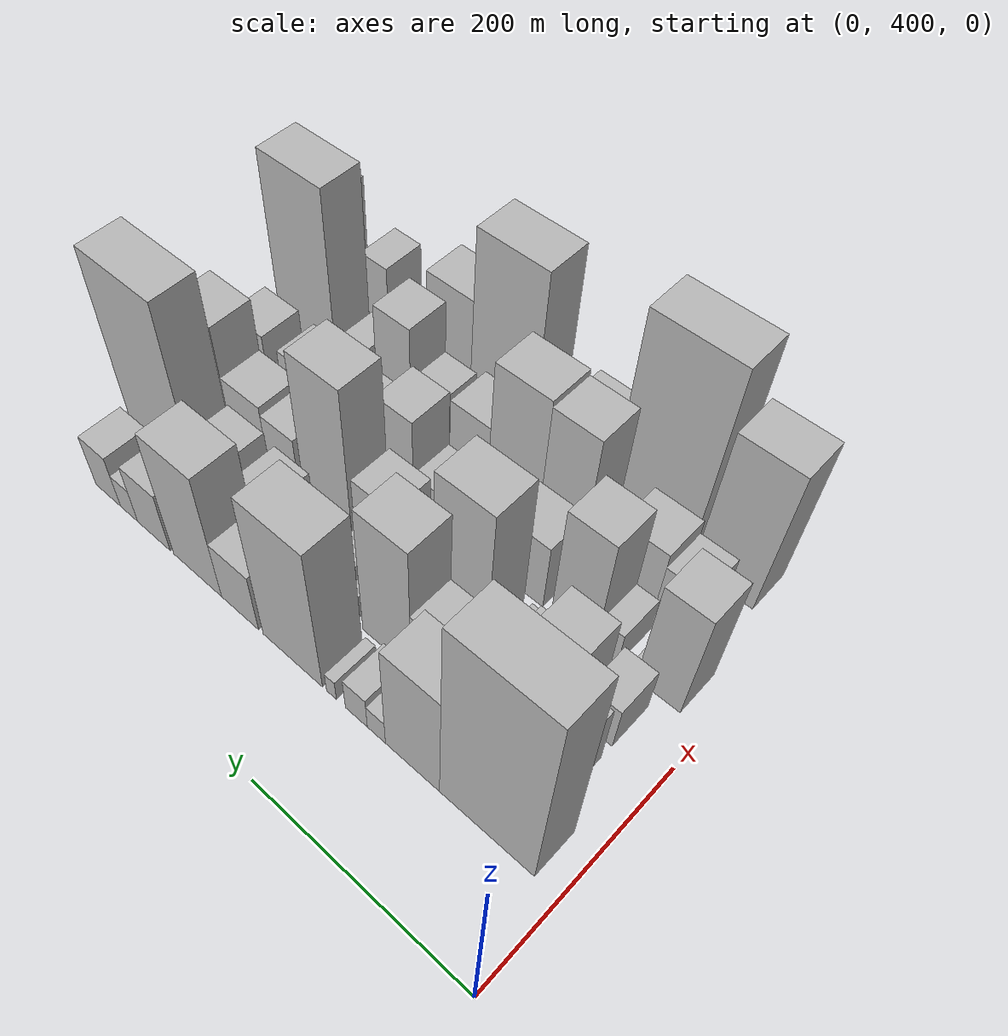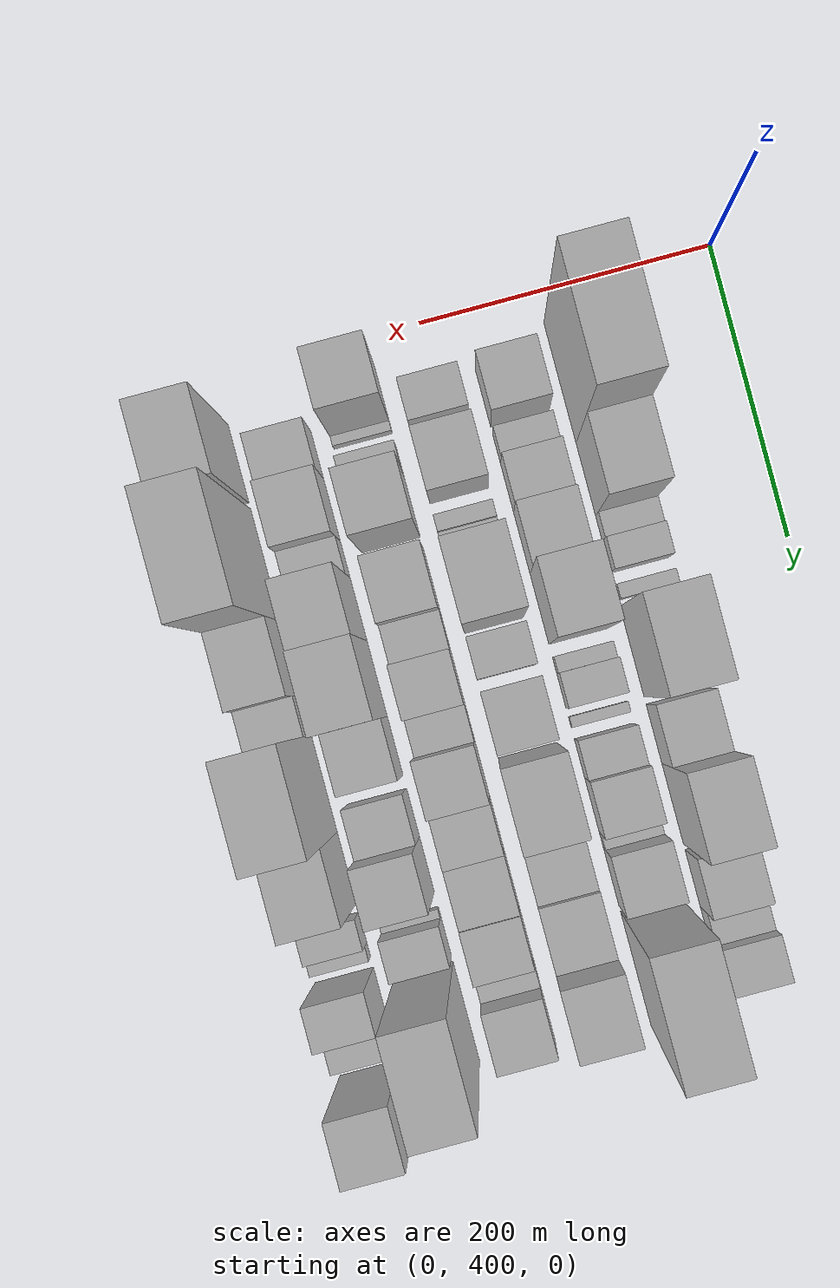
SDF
<sdf version="1.6">
 <world name="default">
  <model name="building_34">
   <static>1</static>
   <pose>100.0000 462.2733 0 0.000000 0.000000 0.000000</pose>
   <link name="link">
    <pose>0 0 109.50 0 0 0</pose>
    <collision name="collision"><geometry><box><size>40.0000 82.7467 219.0000</size></box></geometry></collision>
    <visual name="visual">
     <cast_shadows>0</cast_shadows>
     <geometry><box><size>40.0000 82.7467 219.0000</size></box></geometry>
     <material>
      <script>
       <uri>model://HANNAS_wall/materials/scripts</uri>
       <uri>model://HANNAS_wall/materials/textures</uri>
       <name>vrc/HANNAS_wall</name>
      </script>
     </material>
    </visual>
   </link>
  </model>
  <model name="building_35">
   <static>1</static>
   <pose>100.0000 528.7735 0 0.000000 0.000000 0.000000</pose>
   <link name="link">
    <pose>0 0 64.50 0 0 0</pose>
    <collision name="collision"><geometry><box><size>40.0000 50.2537 129.0000</size></box></geometry></collision>
    <visual name="visual">
     <cast_shadows>0</cast_shadows>
     <geometry><box><size>40.0000 50.2537 129.0000</size></box></geometry>
     <material>
      <script>
       <uri>model://HANNAS_wall/materials/scripts</uri>
       <uri>model://HANNAS_wall/materials/textures</uri>
       <name>vrc/HANNAS_wall</name>
      </script>
     </material>
    </visual>
   </link>
  </model>
  <model name="building_36">
   <static>1</static>
   <pose>100.0000 562.5985 0 0.000000 0.000000 0.000000</pose>
   <link name="link">
    <pose>0 0 15.00 0 0 0</pose>
    <collision name="collision"><geometry><box><size>40.0000 17.3963 30.0000</size></box></geometry></collision>
    <visual name="visual">
     <cast_shadows>0</cast_shadows>
     <geometry><box><size>40.0000 17.3963 30.0000</size></box></geometry>
     <material>
      <script>
       <uri>model://HANNAS_wall/materials/scripts</uri>
       <uri>model://HANNAS_wall/materials/textures</uri>
       <name>vrc/HANNAS_wall</name>
      </script>
     </material>
    </visual>
   </link>
  </model>
  <model name="building_37">
   <static>1</static>
   <pose>100.0000 582.0654 0 0.000000 0.000000 0.000000</pose>
   <link name="link">
    <pose>0 0 19.50 0 0 0</pose>
    <collision name="collision"><geometry><box><size>40.0000 21.5375 39.0000</size></box></geometry></collision>
    <visual name="visual">
     <cast_shadows>0</cast_shadows>
     <geometry><box><size>40.0000 21.5375 39.0000</size></box></geometry>
     <material>
      <script>
       <uri>model://HANNAS_wall/materials/scripts</uri>
       <uri>model://HANNAS_wall/materials/textures</uri>
       <name>vrc/HANNAS_wall</name>
      </script>
     </material>
    </visual>
   </link>
  </model>
  <model name="building_38">
   <static>1</static>
   <pose>100.0000 606.7923 0 0.000000 0.000000 0.000000</pose>
   <link name="link">
    <pose>0 0 12.00 0 0 0</pose>
    <collision name="collision"><geometry><box><size>40.0000 9.9163 24.0000</size></box></geometry></collision>
    <visual name="visual">
     <cast_shadows>0</cast_shadows>
     <geometry><box><size>40.0000 9.9163 24.0000</size></box></geometry>
     <material>
      <script>
       <uri>model://HANNAS_wall/materials/scripts</uri>
       <uri>model://HANNAS_wall/materials/textures</uri>
       <name>vrc/HANNAS_wall</name>
      </script>
     </material>
    </visual>
   </link>
  </model>
  <model name="building_39">
   <static>1</static>
   <pose>100.0000 646.8354 0 0.000000 0.000000 0.000000</pose>
   <link name="link">
    <pose>0 0 84.00 0 0 0</pose>
    <collision name="collision"><geometry><box><size>40.0000 62.1698 168.0000</size></box></geometry></collision>
    <visual name="visual">
     <cast_shadows>0</cast_shadows>
     <geometry><box><size>40.0000 62.1698 168.0000</size></box></geometry>
     <material>
      <script>
       <uri>model://HANNAS_wall/materials/scripts</uri>
       <uri>model://HANNAS_wall/materials/textures</uri>
       <name>vrc/HANNAS_wall</name>
      </script>
     </material>
    </visual>
   </link>
  </model>
  <model name="building_40">
   <static>1</static>
   <pose>100.0000 703.2620 0 0.000000 0.000000 0.000000</pose>
   <link name="link">
    <pose>0 0 34.50 0 0 0</pose>
    <collision name="collision"><geometry><box><size>40.0000 40.6835 69.0000</size></box></geometry></collision>
    <visual name="visual">
     <cast_shadows>0</cast_shadows>
     <geometry><box><size>40.0000 40.6835 69.0000</size></box></geometry>
     <material>
      <script>
       <uri>model://HANNAS_wall/materials/scripts</uri>
       <uri>model://HANNAS_wall/materials/textures</uri>
       <name>vrc/HANNAS_wall</name>
      </script>
     </material>
    </visual>
   </link>
  </model>
  <model name="building_41">
   <static>1</static>
   <pose>100.0000 751.2611 0 0.000000 0.000000 0.000000</pose>
   <link name="link">
    <pose>0 0 72.00 0 0 0</pose>
    <collision name="collision"><geometry><box><size>40.0000 55.3147 144.0000</size></box></geometry></collision>
    <visual name="visual">
     <cast_shadows>0</cast_shadows>
     <geometry><box><size>40.0000 55.3147 144.0000</size></box></geometry>
     <material>
      <script>
       <uri>model://HANNAS_wall/materials/scripts</uri>
       <uri>model://HANNAS_wall/materials/textures</uri>
       <name>vrc/HANNAS_wall</name>
      </script>
     </material>
    </visual>
   </link>
  </model>
  <model name="building_42">
   <static>1</static>
   <pose>100.0000 802.6028 0 0.000000 0.000000 0.000000</pose>
   <link name="link">
    <pose>0 0 34.50 0 0 0</pose>
    <collision name="collision"><geometry><box><size>40.0000 39.3687 69.0000</size></box></geometry></collision>
    <visual name="visual">
     <cast_shadows>0</cast_shadows>
     <geometry><box><size>40.0000 39.3687 69.0000</size></box></geometry>
     <material>
      <script>
       <uri>model://HANNAS_wall/materials/scripts</uri>
       <uri>model://HANNAS_wall/materials/textures</uri>
       <name>vrc/HANNAS_wall</name>
      </script>
     </material>
    </visual>
   </link>
  </model>
  <model name="building_43">
   <static>1</static>
   <pose>100.0000 832.8690 0 0.000000 0.000000 0.000000</pose>
   <link name="link">
    <pose>0 0 19.50 0 0 0</pose>
    <collision name="collision"><geometry><box><size>40.0000 21.1639 39.0000</size></box></geometry></collision>
    <visual name="visual">
     <cast_shadows>0</cast_shadows>
     <geometry><box><size>40.0000 21.1639 39.0000</size></box></geometry>
     <material>
      <script>
       <uri>model://HANNAS_wall/materials/scripts</uri>
       <uri>model://HANNAS_wall/materials/textures</uri>
       <name>vrc/HANNAS_wall</name>
      </script>
     </material>
    </visual>
   </link>
  </model>
  <model name="building_44">
   <static>1</static>
   <pose>100.0000 859.0596 0 0.000000 0.000000 0.000000</pose>
   <link name="link">
    <pose>0 0 30.00 0 0 0</pose>
    <collision name="collision"><geometry><box><size>40.0000 31.2172 60.0000</size></box></geometry></collision>
    <visual name="visual">
     <cast_shadows>0</cast_shadows>
     <geometry><box><size>40.0000 31.2172 60.0000</size></box></geometry>
     <material>
      <script>
       <uri>model://HANNAS_wall/materials/scripts</uri>
       <uri>model://HANNAS_wall/materials/textures</uri>
       <name>vrc/HANNAS_wall</name>
      </script>
     </material>
    </visual>
   </link>
  </model>
  <model name="building_79">
   <static>1</static>
   <pose>152.0000 459.5644 0 0.000000 0.000000 0.000000</pose>
   <link name="link">
    <pose>0 0 36.00 0 0 0</pose>
    <collision name="collision"><geometry><box><size>40.0000 38.6811 72.0000</size></box></geometry></collision>
    <visual name="visual">
     <cast_shadows>0</cast_shadows>
     <geometry><box><size>40.0000 38.6811 72.0000</size></box></geometry>
     <material>
      <script>
       <uri>model://HANNAS_wall/materials/scripts</uri>
       <uri>model://HANNAS_wall/materials/textures</uri>
       <name>vrc/HANNAS_wall</name>
      </script>
     </material>
    </visual>
   </link>
  </model>
  <model name="building_80">
   <static>1</static>
   <pose>152.0000 494.1430 0 0.000000 0.000000 0.000000</pose>
   <link name="link">
    <pose>0 0 19.50 0 0 0</pose>
    <collision name="collision"><geometry><box><size>40.0000 20.4761 39.0000</size></box></geometry></collision>
    <visual name="visual">
     <cast_shadows>0</cast_shadows>
     <geometry><box><size>40.0000 20.4761 39.0000</size></box></geometry>
     <material>
      <script>
       <uri>model://HANNAS_wall/materials/scripts</uri>
       <uri>model://HANNAS_wall/materials/textures</uri>
       <name>vrc/HANNAS_wall</name>
      </script>
     </material>
    </visual>
   </link>
  </model>
  <model name="building_81">
   <static>1</static>
   <pose>152.0000 521.0089 0 0.000000 0.000000 0.000000</pose>
   <link name="link">
    <pose>0 0 30.00 0 0 0</pose>
    <collision name="collision"><geometry><box><size>40.0000 33.2556 60.0000</size></box></geometry></collision>
    <visual name="visual">
     <cast_shadows>0</cast_shadows>
     <geometry><box><size>40.0000 33.2556 60.0000</size></box></geometry>
     <material>
      <script>
       <uri>model://HANNAS_wall/materials/scripts</uri>
       <uri>model://HANNAS_wall/materials/textures</uri>
       <name>vrc/HANNAS_wall</name>
      </script>
     </material>
    </visual>
   </link>
  </model>
  <model name="building_82">
   <static>1</static>
   <pose>152.0000 558.6258 0 0.000000 0.000000 0.000000</pose>
   <link name="link">
    <pose>0 0 37.50 0 0 0</pose>
    <collision name="collision"><geometry><box><size>40.0000 41.9782 75.0000</size></box></geometry></collision>
    <visual name="visual">
     <cast_shadows>0</cast_shadows>
     <geometry><box><size>40.0000 41.9782 75.0000</size></box></geometry>
     <material>
      <script>
       <uri>model://HANNAS_wall/materials/scripts</uri>
       <uri>model://HANNAS_wall/materials/textures</uri>
       <name>vrc/HANNAS_wall</name>
      </script>
     </material>
    </visual>
   </link>
  </model>
  <model name="building_83">
   <static>1</static>
   <pose>152.0000 603.7651 0 0.000000 0.000000 0.000000</pose>
   <link name="link">
    <pose>0 0 75.00 0 0 0</pose>
    <collision name="collision"><geometry><box><size>40.0000 48.3003 150.0000</size></box></geometry></collision>
    <visual name="visual">
     <cast_shadows>0</cast_shadows>
     <geometry><box><size>40.0000 48.3003 150.0000</size></box></geometry>
     <material>
      <script>
       <uri>model://HANNAS_wall/materials/scripts</uri>
       <uri>model://HANNAS_wall/materials/textures</uri>
       <name>vrc/HANNAS_wall</name>
      </script>
     </material>
    </visual>
   </link>
  </model>
  <model name="building_84">
   <static>1</static>
   <pose>152.0000 642.4382 0 0.000000 0.000000 0.000000</pose>
   <link name="link">
    <pose>0 0 13.50 0 0 0</pose>
    <collision name="collision"><geometry><box><size>40.0000 11.0460 27.0000</size></box></geometry></collision>
    <visual name="visual">
     <cast_shadows>0</cast_shadows>
     <geometry><box><size>40.0000 11.0460 27.0000</size></box></geometry>
     <material>
      <script>
       <uri>model://HANNAS_wall/materials/scripts</uri>
       <uri>model://HANNAS_wall/materials/textures</uri>
       <name>vrc/HANNAS_wall</name>
      </script>
     </material>
    </visual>
   </link>
  </model>
  <model name="building_85">
   <static>1</static>
   <pose>152.0000 659.7705 0 0.000000 0.000000 0.000000</pose>
   <link name="link">
    <pose>0 0 22.50 0 0 0</pose>
    <collision name="collision"><geometry><box><size>40.0000 23.6186 45.0000</size></box></geometry></collision>
    <visual name="visual">
     <cast_shadows>0</cast_shadows>
     <geometry><box><size>40.0000 23.6186 45.0000</size></box></geometry>
     <material>
      <script>
       <uri>model://HANNAS_wall/materials/scripts</uri>
       <uri>model://HANNAS_wall/materials/textures</uri>
       <name>vrc/HANNAS_wall</name>
      </script>
     </material>
    </visual>
   </link>
  </model>
  <model name="building_86">
   <static>1</static>
   <pose>152.0000 681.2145 0 0.000000 0.000000 0.000000</pose>
   <link name="link">
    <pose>0 0 7.50 0 0 0</pose>
    <collision name="collision"><geometry><box><size>40.0000 7.2694 15.0000</size></box></geometry></collision>
    <visual name="visual">
     <cast_shadows>0</cast_shadows>
     <geometry><box><size>40.0000 7.2694 15.0000</size></box></geometry>
     <material>
      <script>
       <uri>model://HANNAS_wall/materials/scripts</uri>
       <uri>model://HANNAS_wall/materials/textures</uri>
       <name>vrc/HANNAS_wall</name>
      </script>
     </material>
    </visual>
   </link>
  </model>
  <model name="building_87">
   <static>1</static>
   <pose>152.0000 706.0855 0 0.000000 0.000000 0.000000</pose>
   <link name="link">
    <pose>0 0 24.00 0 0 0</pose>
    <collision name="collision"><geometry><box><size>40.0000 26.4727 48.0000</size></box></geometry></collision>
    <visual name="visual">
     <cast_shadows>0</cast_shadows>
     <geometry><box><size>40.0000 26.4727 48.0000</size></box></geometry>
     <material>
      <script>
       <uri>model://HANNAS_wall/materials/scripts</uri>
       <uri>model://HANNAS_wall/materials/textures</uri>
       <name>vrc/HANNAS_wall</name>
      </script>
     </material>
    </visual>
   </link>
  </model>
  <model name="building_88">
   <static>1</static>
   <pose>152.0000 737.9097 0 0.000000 0.000000 0.000000</pose>
   <link name="link">
    <pose>0 0 33.00 0 0 0</pose>
    <collision name="collision"><geometry><box><size>40.0000 37.1757 66.0000</size></box></geometry></collision>
    <visual name="visual">
     <cast_shadows>0</cast_shadows>
     <geometry><box><size>40.0000 37.1757 66.0000</size></box></geometry>
     <material>
      <script>
       <uri>model://HANNAS_wall/materials/scripts</uri>
       <uri>model://HANNAS_wall/materials/textures</uri>
       <name>vrc/HANNAS_wall</name>
      </script>
     </material>
    </visual>
   </link>
  </model>
  <model name="building_89">
   <static>1</static>
   <pose>152.0000 761.8170 0 0.000000 0.000000 0.000000</pose>
   <link name="link">
    <pose>0 0 12.00 0 0 0</pose>
    <collision name="collision"><geometry><box><size>40.0000 10.6388 24.0000</size></box></geometry></collision>
    <visual name="visual">
     <cast_shadows>0</cast_shadows>
     <geometry><box><size>40.0000 10.6388 24.0000</size></box></geometry>
     <material>
      <script>
       <uri>model://HANNAS_wall/materials/scripts</uri>
       <uri>model://HANNAS_wall/materials/textures</uri>
       <name>vrc/HANNAS_wall</name>
      </script>
     </material>
    </visual>
   </link>
  </model>
  <model name="building_90">
   <static>1</static>
   <pose>152.0000 787.1995 0 0.000000 0.000000 0.000000</pose>
   <link name="link">
    <pose>0 0 36.00 0 0 0</pose>
    <collision name="collision"><geometry><box><size>40.0000 40.1262 72.0000</size></box></geometry></collision>
    <visual name="visual">
     <cast_shadows>0</cast_shadows>
     <geometry><box><size>40.0000 40.1262 72.0000</size></box></geometry>
     <material>
      <script>
       <uri>model://HANNAS_wall/materials/scripts</uri>
       <uri>model://HANNAS_wall/materials/textures</uri>
       <name>vrc/HANNAS_wall</name>
      </script>
     </material>
    </visual>
   </link>
  </model>
  <model name="building_91">
   <static>1</static>
   <pose>152.0000 850.6991 0 0.000000 0.000000 0.000000</pose>
   <link name="link">
    <pose>0 0 102.00 0 0 0</pose>
    <collision name="collision"><geometry><box><size>40.0000 78.8730 204.0000</size></box></geometry></collision>
    <visual name="visual">
     <cast_shadows>0</cast_shadows>
     <geometry><box><size>40.0000 78.8730 204.0000</size></box></geometry>
     <material>
      <script>
       <uri>model://HANNAS_wall/materials/scripts</uri>
       <uri>model://HANNAS_wall/materials/textures</uri>
       <name>vrc/HANNAS_wall</name>
      </script>
     </material>
    </visual>
   </link>
  </model>
  <model name="building_129">
   <static>1</static>
   <pose>204.0000 454.1553 0 0.000000 0.000000 0.000000</pose>
   <link name="link">
    <pose>0 0 25.50 0 0 0</pose>
    <collision name="collision"><geometry><box><size>40.0000 28.4032 51.0000</size></box></geometry></collision>
    <visual name="visual">
     <cast_shadows>0</cast_shadows>
     <geometry><box><size>40.0000 28.4032 51.0000</size></box></geometry>
     <material>
      <script>
       <uri>model://HANNAS_wall/materials/scripts</uri>
       <uri>model://HANNAS_wall/materials/textures</uri>
       <name>vrc/HANNAS_wall</name>
      </script>
     </material>
    </visual>
   </link>
  </model>
  <model name="building_130">
   <static>1</static>
   <pose>204.0000 496.3636 0 0.000000 0.000000 0.000000</pose>
   <link name="link">
    <pose>0 0 37.50 0 0 0</pose>
    <collision name="collision"><geometry><box><size>40.0000 42.0132 75.0000</size></box></geometry></collision>
    <visual name="visual">
     <cast_shadows>0</cast_shadows>
     <geometry><box><size>40.0000 42.0132 75.0000</size></box></geometry>
     <material>
      <script>
       <uri>model://HANNAS_wall/materials/scripts</uri>
       <uri>model://HANNAS_wall/materials/textures</uri>
       <name>vrc/HANNAS_wall</name>
      </script>
     </material>
    </visual>
   </link>
  </model>
  <model name="building_131">
   <static>1</static>
   <pose>204.0000 533.0632 0 0.000000 0.000000 0.000000</pose>
   <link name="link">
    <pose>0 0 12.00 0 0 0</pose>
    <collision name="collision"><geometry><box><size>40.0000 11.3861 24.0000</size></box></geometry></collision>
    <visual name="visual">
     <cast_shadows>0</cast_shadows>
     <geometry><box><size>40.0000 11.3861 24.0000</size></box></geometry>
     <material>
      <script>
       <uri>model://HANNAS_wall/materials/scripts</uri>
       <uri>model://HANNAS_wall/materials/textures</uri>
       <name>vrc/HANNAS_wall</name>
      </script>
     </material>
    </visual>
   </link>
  </model>
  <model name="building_132">
   <static>1</static>
   <pose>204.0000 542.5376 0 0.000000 0.000000 0.000000</pose>
   <link name="link">
    <pose>0 0 9.00 0 0 0</pose>
    <collision name="collision"><geometry><box><size>40.0000 7.5628 18.0000</size></box></geometry></collision>
    <visual name="visual">
     <cast_shadows>0</cast_shadows>
     <geometry><box><size>40.0000 7.5628 18.0000</size></box></geometry>
     <material>
      <script>
       <uri>model://HANNAS_wall/materials/scripts</uri>
       <uri>model://HANNAS_wall/materials/textures</uri>
       <name>vrc/HANNAS_wall</name>
      </script>
     </material>
    </visual>
   </link>
  </model>
  <model name="building_133">
   <static>1</static>
   <pose>204.0000 580.4287 0 0.000000 0.000000 0.000000</pose>
   <link name="link">
    <pose>0 0 79.50 0 0 0</pose>
    <collision name="collision"><geometry><box><size>40.0000 52.2195 159.0000</size></box></geometry></collision>
    <visual name="visual">
     <cast_shadows>0</cast_shadows>
     <geometry><box><size>40.0000 52.2195 159.0000</size></box></geometry>
     <material>
      <script>
       <uri>model://HANNAS_wall/materials/scripts</uri>
       <uri>model://HANNAS_wall/materials/textures</uri>
       <name>vrc/HANNAS_wall</name>
      </script>
     </material>
    </visual>
   </link>
  </model>
  <model name="building_134">
   <static>1</static>
   <pose>204.0000 624.6006 0 0.000000 0.000000 0.000000</pose>
   <link name="link">
    <pose>0 0 27.00 0 0 0</pose>
    <collision name="collision"><geometry><box><size>40.0000 28.1243 54.0000</size></box></geometry></collision>
    <visual name="visual">
     <cast_shadows>0</cast_shadows>
     <geometry><box><size>40.0000 28.1243 54.0000</size></box></geometry>
     <material>
      <script>
       <uri>model://HANNAS_wall/materials/scripts</uri>
       <uri>model://HANNAS_wall/materials/textures</uri>
       <name>vrc/HANNAS_wall</name>
      </script>
     </material>
    </visual>
   </link>
  </model>
  <model name="building_135">
   <static>1</static>
   <pose>204.0000 667.3289 0 0.000000 0.000000 0.000000</pose>
   <link name="link">
    <pose>0 0 37.50 0 0 0</pose>
    <collision name="collision"><geometry><box><size>40.0000 41.3323 75.0000</size></box></geometry></collision>
    <visual name="visual">
     <cast_shadows>0</cast_shadows>
     <geometry><box><size>40.0000 41.3323 75.0000</size></box></geometry>
     <material>
      <script>
       <uri>model://HANNAS_wall/materials/scripts</uri>
       <uri>model://HANNAS_wall/materials/textures</uri>
       <name>vrc/HANNAS_wall</name>
      </script>
     </material>
    </visual>
   </link>
  </model>
  <model name="building_136">
   <static>1</static>
   <pose>204.0000 718.0588 0 0.000000 0.000000 0.000000</pose>
   <link name="link">
    <pose>0 0 84.00 0 0 0</pose>
    <collision name="collision"><geometry><box><size>40.0000 52.1276 168.0000</size></box></geometry></collision>
    <visual name="visual">
     <cast_shadows>0</cast_shadows>
     <geometry><box><size>40.0000 52.1276 168.0000</size></box></geometry>
     <material>
      <script>
       <uri>model://HANNAS_wall/materials/scripts</uri>
       <uri>model://HANNAS_wall/materials/textures</uri>
       <name>vrc/HANNAS_wall</name>
      </script>
     </material>
    </visual>
   </link>
  </model>
  <model name="building_137">
   <static>1</static>
   <pose>204.0000 768.1392 0 0.000000 0.000000 0.000000</pose>
   <link name="link">
    <pose>0 0 33.00 0 0 0</pose>
    <collision name="collision"><geometry><box><size>40.0000 36.0332 66.0000</size></box></geometry></collision>
    <visual name="visual">
     <cast_shadows>0</cast_shadows>
     <geometry><box><size>40.0000 36.0332 66.0000</size></box></geometry>
     <material>
      <script>
       <uri>model://HANNAS_wall/materials/scripts</uri>
       <uri>model://HANNAS_wall/materials/textures</uri>
       <name>vrc/HANNAS_wall</name>
      </script>
     </material>
    </visual>
   </link>
  </model>
  <model name="building_138">
   <static>1</static>
   <pose>204.0000 807.8549 0 0.000000 0.000000 0.000000</pose>
   <link name="link">
    <pose>0 0 37.50 0 0 0</pose>
    <collision name="collision"><geometry><box><size>40.0000 43.3982 75.0000</size></box></geometry></collision>
    <visual name="visual">
     <cast_shadows>0</cast_shadows>
     <geometry><box><size>40.0000 43.3982 75.0000</size></box></geometry>
     <material>
      <script>
       <uri>model://HANNAS_wall/materials/scripts</uri>
       <uri>model://HANNAS_wall/materials/textures</uri>
       <name>vrc/HANNAS_wall</name>
      </script>
     </material>
    </visual>
   </link>
  </model>
  <model name="building_139">
   <static>1</static>
   <pose>204.0000 852.4112 0 0.000000 0.000000 0.000000</pose>
   <link name="link">
    <pose>0 0 64.50 0 0 0</pose>
    <collision name="collision"><geometry><box><size>40.0000 45.7143 129.0000</size></box></geometry></collision>
    <visual name="visual">
     <cast_shadows>0</cast_shadows>
     <geometry><box><size>40.0000 45.7143 129.0000</size></box></geometry>
     <material>
      <script>
       <uri>model://HANNAS_wall/materials/scripts</uri>
       <uri>model://HANNAS_wall/materials/textures</uri>
       <name>vrc/HANNAS_wall</name>
      </script>
     </material>
    </visual>
   </link>
  </model>
  <model name="building_173">
   <static>1</static>
   <pose>256.0000 440.1564 0 0.000000 0.000000 0.000000</pose>
   <link name="link">
    <pose>0 0 61.50 0 0 0</pose>
    <collision name="collision"><geometry><box><size>40.0000 38.2951 123.0000</size></box></geometry></collision>
    <visual name="visual">
     <cast_shadows>0</cast_shadows>
     <geometry><box><size>40.0000 38.2951 123.0000</size></box></geometry>
     <material>
      <script>
       <uri>model://HANNAS_wall/materials/scripts</uri>
       <uri>model://HANNAS_wall/materials/textures</uri>
       <name>vrc/HANNAS_wall</name>
      </script>
     </material>
    </visual>
   </link>
  </model>
  <model name="building_174">
   <static>1</static>
   <pose>256.0000 462.6144 0 0.000000 0.000000 0.000000</pose>
   <link name="link">
    <pose>0 0 7.50 0 0 0</pose>
    <collision name="collision"><geometry><box><size>40.0000 6.6210 15.0000</size></box></geometry></collision>
    <visual name="visual">
     <cast_shadows>0</cast_shadows>
     <geometry><box><size>40.0000 6.6210 15.0000</size></box></geometry>
     <material>
      <script>
       <uri>model://HANNAS_wall/materials/scripts</uri>
       <uri>model://HANNAS_wall/materials/textures</uri>
       <name>vrc/HANNAS_wall</name>
      </script>
     </material>
    </visual>
   </link>
  </model>
  <model name="building_175">
   <static>1</static>
   <pose>256.0000 485.9963 0 0.000000 0.000000 0.000000</pose>
   <link name="link">
    <pose>0 0 19.50 0 0 0</pose>
    <collision name="collision"><geometry><box><size>40.0000 20.1428 39.0000</size></box></geometry></collision>
    <visual name="visual">
     <cast_shadows>0</cast_shadows>
     <geometry><box><size>40.0000 20.1428 39.0000</size></box></geometry>
     <material>
      <script>
       <uri>model://HANNAS_wall/materials/scripts</uri>
       <uri>model://HANNAS_wall/materials/textures</uri>
       <name>vrc/HANNAS_wall</name>
      </script>
     </material>
    </visual>
   </link>
  </model>
  <model name="building_176">
   <static>1</static>
   <pose>256.0000 516.6880 0 0.000000 0.000000 0.000000</pose>
   <link name="link">
    <pose>0 0 64.50 0 0 0</pose>
    <collision name="collision"><geometry><box><size>40.0000 41.2405 129.0000</size></box></geometry></collision>
    <visual name="visual">
     <cast_shadows>0</cast_shadows>
     <geometry><box><size>40.0000 41.2405 129.0000</size></box></geometry>
     <material>
      <script>
       <uri>model://HANNAS_wall/materials/scripts</uri>
       <uri>model://HANNAS_wall/materials/textures</uri>
       <name>vrc/HANNAS_wall</name>
      </script>
     </material>
    </visual>
   </link>
  </model>
  <model name="building_177">
   <static>1</static>
   <pose>256.0000 567.0683 0 0.000000 0.000000 0.000000</pose>
   <link name="link">
    <pose>0 0 37.50 0 0 0</pose>
    <collision name="collision"><geometry><box><size>40.0000 43.5202 75.0000</size></box></geometry></collision>
    <visual name="visual">
     <cast_shadows>0</cast_shadows>
     <geometry><box><size>40.0000 43.5202 75.0000</size></box></geometry>
     <material>
      <script>
       <uri>model://HANNAS_wall/materials/scripts</uri>
       <uri>model://HANNAS_wall/materials/textures</uri>
       <name>vrc/HANNAS_wall</name>
      </script>
     </material>
    </visual>
   </link>
  </model>
  <model name="building_178">
   <static>1</static>
   <pose>256.0000 602.1326 0 0.000000 0.000000 0.000000</pose>
   <link name="link">
    <pose>0 0 22.50 0 0 0</pose>
    <collision name="collision"><geometry><box><size>40.0000 26.6084 45.0000</size></box></geometry></collision>
    <visual name="visual">
     <cast_shadows>0</cast_shadows>
     <geometry><box><size>40.0000 26.6084 45.0000</size></box></geometry>
     <material>
      <script>
       <uri>model://HANNAS_wall/materials/scripts</uri>
       <uri>model://HANNAS_wall/materials/textures</uri>
       <name>vrc/HANNAS_wall</name>
      </script>
     </material>
    </visual>
   </link>
  </model>
  <model name="building_179">
   <static>1</static>
   <pose>256.0000 633.5400 0 0.000000 0.000000 0.000000</pose>
   <link name="link">
    <pose>0 0 36.00 0 0 0</pose>
    <collision name="collision"><geometry><box><size>40.0000 36.2065 72.0000</size></box></geometry></collision>
    <visual name="visual">
     <cast_shadows>0</cast_shadows>
     <geometry><box><size>40.0000 36.2065 72.0000</size></box></geometry>
     <material>
      <script>
       <uri>model://HANNAS_wall/materials/scripts</uri>
       <uri>model://HANNAS_wall/materials/textures</uri>
       <name>vrc/HANNAS_wall</name>
      </script>
     </material>
    </visual>
   </link>
  </model>
  <model name="building_180">
   <static>1</static>
   <pose>256.0000 664.1174 0 0.000000 0.000000 0.000000</pose>
   <link name="link">
    <pose>0 0 21.00 0 0 0</pose>
    <collision name="collision"><geometry><box><size>40.0000 24.9482 42.0000</size></box></geometry></collision>
    <visual name="visual">
     <cast_shadows>0</cast_shadows>
     <geometry><box><size>40.0000 24.9482 42.0000</size></box></geometry>
     <material>
      <script>
       <uri>model://HANNAS_wall/materials/scripts</uri>
       <uri>model://HANNAS_wall/materials/textures</uri>
       <name>vrc/HANNAS_wall</name>
      </script>
     </material>
    </visual>
   </link>
  </model>
  <model name="building_181">
   <static>1</static>
   <pose>256.0000 695.3042 0 0.000000 0.000000 0.000000</pose>
   <link name="link">
    <pose>0 0 51.00 0 0 0</pose>
    <collision name="collision"><geometry><box><size>40.0000 37.4255 102.0000</size></box></geometry></collision>
    <visual name="visual">
     <cast_shadows>0</cast_shadows>
     <geometry><box><size>40.0000 37.4255 102.0000</size></box></geometry>
     <material>
      <script>
       <uri>model://HANNAS_wall/materials/scripts</uri>
       <uri>model://HANNAS_wall/materials/textures</uri>
       <name>vrc/HANNAS_wall</name>
      </script>
     </material>
    </visual>
   </link>
  </model>
  <model name="building_182">
   <static>1</static>
   <pose>256.0000 731.6556 0 0.000000 0.000000 0.000000</pose>
   <link name="link">
    <pose>0 0 34.50 0 0 0</pose>
    <collision name="collision"><geometry><box><size>40.0000 35.2772 69.0000</size></box></geometry></collision>
    <visual name="visual">
     <cast_shadows>0</cast_shadows>
     <geometry><box><size>40.0000 35.2772 69.0000</size></box></geometry>
     <material>
      <script>
       <uri>model://HANNAS_wall/materials/scripts</uri>
       <uri>model://HANNAS_wall/materials/textures</uri>
       <name>vrc/HANNAS_wall</name>
      </script>
     </material>
    </visual>
   </link>
  </model>
  <model name="building_183">
   <static>1</static>
   <pose>256.0000 768.8590 0 0.000000 0.000000 0.000000</pose>
   <link name="link">
    <pose>0 0 33.00 0 0 0</pose>
    <collision name="collision"><geometry><box><size>40.0000 39.1297 66.0000</size></box></geometry></collision>
    <visual name="visual">
     <cast_shadows>0</cast_shadows>
     <geometry><box><size>40.0000 39.1297 66.0000</size></box></geometry>
     <material>
      <script>
       <uri>model://HANNAS_wall/materials/scripts</uri>
       <uri>model://HANNAS_wall/materials/textures</uri>
       <name>vrc/HANNAS_wall</name>
      </script>
     </material>
    </visual>
   </link>
  </model>
  <model name="building_184">
   <static>1</static>
   <pose>256.0000 806.1475 0 0.000000 0.000000 0.000000</pose>
   <link name="link">
    <pose>0 0 34.50 0 0 0</pose>
    <collision name="collision"><geometry><box><size>40.0000 35.4471 69.0000</size></box></geometry></collision>
    <visual name="visual">
     <cast_shadows>0</cast_shadows>
     <geometry><box><size>40.0000 35.4471 69.0000</size></box></geometry>
     <material>
      <script>
       <uri>model://HANNAS_wall/materials/scripts</uri>
       <uri>model://HANNAS_wall/materials/textures</uri>
       <name>vrc/HANNAS_wall</name>
      </script>
     </material>
    </visual>
   </link>
  </model>
  <model name="building_185">
   <static>1</static>
   <pose>256.0000 832.4599 0 0.000000 0.000000 0.000000</pose>
   <link name="link">
    <pose>0 0 16.50 0 0 0</pose>
    <collision name="collision"><geometry><box><size>40.0000 17.1778 33.0000</size></box></geometry></collision>
    <visual name="visual">
     <cast_shadows>0</cast_shadows>
     <geometry><box><size>40.0000 17.1778 33.0000</size></box></geometry>
     <material>
      <script>
       <uri>model://HANNAS_wall/materials/scripts</uri>
       <uri>model://HANNAS_wall/materials/textures</uri>
       <name>vrc/HANNAS_wall</name>
      </script>
     </material>
    </visual>
   </link>
  </model>
  <model name="building_186">
   <static>1</static>
   <pose>256.0000 861.0607 0 0.000000 0.000000 0.000000</pose>
   <link name="link">
    <pose>0 0 36.00 0 0 0</pose>
    <collision name="collision"><geometry><box><size>40.0000 40.0236 72.0000</size></box></geometry></collision>
    <visual name="visual">
     <cast_shadows>0</cast_shadows>
     <geometry><box><size>40.0000 40.0236 72.0000</size></box></geometry>
     <material>
      <script>
       <uri>model://HANNAS_wall/materials/scripts</uri>
       <uri>model://HANNAS_wall/materials/textures</uri>
       <name>vrc/HANNAS_wall</name>
      </script>
     </material>
    </visual>
   </link>
  </model>
  <model name="building_225">
   <static>1</static>
   <pose>308.0000 466.7333 0 0.000000 0.000000 0.000000</pose>
   <link name="link">
    <pose>0 0 30.00 0 0 0</pose>
    <collision name="collision"><geometry><box><size>40.0000 32.8463 60.0000</size></box></geometry></collision>
    <visual name="visual">
     <cast_shadows>0</cast_shadows>
     <geometry><box><size>40.0000 32.8463 60.0000</size></box></geometry>
     <material>
      <script>
       <uri>model://HANNAS_wall/materials/scripts</uri>
       <uri>model://HANNAS_wall/materials/textures</uri>
       <name>vrc/HANNAS_wall</name>
      </script>
     </material>
    </visual>
   </link>
  </model>
  <model name="building_226">
   <static>1</static>
   <pose>308.0000 504.5248 0 0.000000 0.000000 0.000000</pose>
   <link name="link">
    <pose>0 0 37.50 0 0 0</pose>
    <collision name="collision"><geometry><box><size>40.0000 42.7368 75.0000</size></box></geometry></collision>
    <visual name="visual">
     <cast_shadows>0</cast_shadows>
     <geometry><box><size>40.0000 42.7368 75.0000</size></box></geometry>
     <material>
      <script>
       <uri>model://HANNAS_wall/materials/scripts</uri>
       <uri>model://HANNAS_wall/materials/textures</uri>
       <name>vrc/HANNAS_wall</name>
      </script>
     </material>
    </visual>
   </link>
  </model>
  <model name="building_227">
   <static>1</static>
   <pose>308.0000 538.4182 0 0.000000 0.000000 0.000000</pose>
   <link name="link">
    <pose>0 0 21.00 0 0 0</pose>
    <collision name="collision"><geometry><box><size>40.0000 25.0500 42.0000</size></box></geometry></collision>
    <visual name="visual">
     <cast_shadows>0</cast_shadows>
     <geometry><box><size>40.0000 25.0500 42.0000</size></box></geometry>
     <material>
      <script>
       <uri>model://HANNAS_wall/materials/scripts</uri>
       <uri>model://HANNAS_wall/materials/textures</uri>
       <name>vrc/HANNAS_wall</name>
      </script>
     </material>
    </visual>
   </link>
  </model>
  <model name="building_228">
   <static>1</static>
   <pose>308.0000 572.6658 0 0.000000 0.000000 0.000000</pose>
   <link name="link">
    <pose>0 0 70.50 0 0 0</pose>
    <collision name="collision"><geometry><box><size>40.0000 43.4451 141.0000</size></box></geometry></collision>
    <visual name="visual">
     <cast_shadows>0</cast_shadows>
     <geometry><box><size>40.0000 43.4451 141.0000</size></box></geometry>
     <material>
      <script>
       <uri>model://HANNAS_wall/materials/scripts</uri>
       <uri>model://HANNAS_wall/materials/textures</uri>
       <name>vrc/HANNAS_wall</name>
      </script>
     </material>
    </visual>
   </link>
  </model>
  <model name="building_229">
   <static>1</static>
   <pose>308.0000 620.3614 0 0.000000 0.000000 0.000000</pose>
   <link name="link">
    <pose>0 0 73.50 0 0 0</pose>
    <collision name="collision"><geometry><box><size>40.0000 51.9460 147.0000</size></box></geometry></collision>
    <visual name="visual">
     <cast_shadows>0</cast_shadows>
     <geometry><box><size>40.0000 51.9460 147.0000</size></box></geometry>
     <material>
      <script>
       <uri>model://HANNAS_wall/materials/scripts</uri>
       <uri>model://HANNAS_wall/materials/textures</uri>
       <name>vrc/HANNAS_wall</name>
      </script>
     </material>
    </visual>
   </link>
  </model>
  <model name="building_230">
   <static>1</static>
   <pose>308.0000 666.5228 0 0.000000 0.000000 0.000000</pose>
   <link name="link">
    <pose>0 0 37.50 0 0 0</pose>
    <collision name="collision"><geometry><box><size>40.0000 40.3769 75.0000</size></box></geometry></collision>
    <visual name="visual">
     <cast_shadows>0</cast_shadows>
     <geometry><box><size>40.0000 40.3769 75.0000</size></box></geometry>
     <material>
      <script>
       <uri>model://HANNAS_wall/materials/scripts</uri>
       <uri>model://HANNAS_wall/materials/textures</uri>
       <name>vrc/HANNAS_wall</name>
      </script>
     </material>
    </visual>
   </link>
  </model>
  <model name="building_231">
   <static>1</static>
   <pose>308.0000 712.3010 0 0.000000 0.000000 0.000000</pose>
   <link name="link">
    <pose>0 0 33.00 0 0 0</pose>
    <collision name="collision"><geometry><box><size>40.0000 33.1794 66.0000</size></box></geometry></collision>
    <visual name="visual">
     <cast_shadows>0</cast_shadows>
     <geometry><box><size>40.0000 33.1794 66.0000</size></box></geometry>
     <material>
      <script>
       <uri>model://HANNAS_wall/materials/scripts</uri>
       <uri>model://HANNAS_wall/materials/textures</uri>
       <name>vrc/HANNAS_wall</name>
      </script>
     </material>
    </visual>
   </link>
  </model>
  <model name="building_232">
   <static>1</static>
   <pose>308.0000 747.8334 0 0.000000 0.000000 0.000000</pose>
   <link name="link">
    <pose>0 0 60.00 0 0 0</pose>
    <collision name="collision"><geometry><box><size>40.0000 37.8856 120.0000</size></box></geometry></collision>
    <visual name="visual">
     <cast_shadows>0</cast_shadows>
     <geometry><box><size>40.0000 37.8856 120.0000</size></box></geometry>
     <material>
      <script>
       <uri>model://HANNAS_wall/materials/scripts</uri>
       <uri>model://HANNAS_wall/materials/textures</uri>
       <name>vrc/HANNAS_wall</name>
      </script>
     </material>
    </visual>
   </link>
  </model>
  <model name="building_233">
   <static>1</static>
   <pose>308.0000 779.9088 0 0.000000 0.000000 0.000000</pose>
   <link name="link">
    <pose>0 0 7.50 0 0 0</pose>
    <collision name="collision"><geometry><box><size>40.0000 6.2653 15.0000</size></box></geometry></collision>
    <visual name="visual">
     <cast_shadows>0</cast_shadows>
     <geometry><box><size>40.0000 6.2653 15.0000</size></box></geometry>
     <material>
      <script>
       <uri>model://HANNAS_wall/materials/scripts</uri>
       <uri>model://HANNAS_wall/materials/textures</uri>
       <name>vrc/HANNAS_wall</name>
      </script>
     </material>
    </visual>
   </link>
  </model>
  <model name="building_234">
   <static>1</static>
   <pose>308.0000 796.8466 0 0.000000 0.000000 0.000000</pose>
   <link name="link">
    <pose>0 0 27.00 0 0 0</pose>
    <collision name="collision"><geometry><box><size>40.0000 27.6102 54.0000</size></box></geometry></collision>
    <visual name="visual">
     <cast_shadows>0</cast_shadows>
     <geometry><box><size>40.0000 27.6102 54.0000</size></box></geometry>
     <material>
      <script>
       <uri>model://HANNAS_wall/materials/scripts</uri>
       <uri>model://HANNAS_wall/materials/textures</uri>
       <name>vrc/HANNAS_wall</name>
      </script>
     </material>
    </visual>
   </link>
  </model>
  <model name="building_235">
   <static>1</static>
   <pose>308.0000 848.5795 0 0.000000 0.000000 0.000000</pose>
   <link name="link">
    <pose>0 0 100.50 0 0 0</pose>
    <collision name="collision"><geometry><box><size>40.0000 67.8557 201.0000</size></box></geometry></collision>
    <visual name="visual">
     <cast_shadows>0</cast_shadows>
     <geometry><box><size>40.0000 67.8557 201.0000</size></box></geometry>
     <material>
      <script>
       <uri>model://HANNAS_wall/materials/scripts</uri>
       <uri>model://HANNAS_wall/materials/textures</uri>
       <name>vrc/HANNAS_wall</name>
      </script>
     </material>
    </visual>
   </link>
  </model>
  <model name="building_273">
   <static>1</static>
   <pose>360.0000 458.6831 0 0.000000 0.000000 0.000000</pose>
   <link name="link">
    <pose>0 0 79.50 0 0 0</pose>
    <collision name="collision"><geometry><box><size>40.0000 54.2104 159.0000</size></box></geometry></collision>
    <visual name="visual">
     <cast_shadows>0</cast_shadows>
     <geometry><box><size>40.0000 54.2104 159.0000</size></box></geometry>
     <material>
      <script>
       <uri>model://HANNAS_wall/materials/scripts</uri>
       <uri>model://HANNAS_wall/materials/textures</uri>
       <name>vrc/HANNAS_wall</name>
      </script>
     </material>
    </visual>
   </link>
  </model>
  <model name="building_274">
   <static>1</static>
   <pose>360.0000 528.4477 0 0.000000 0.000000 0.000000</pose>
   <link name="link">
    <pose>0 0 108.00 0 0 0</pose>
    <collision name="collision"><geometry><box><size>40.0000 77.3187 216.0000</size></box></geometry></collision>
    <visual name="visual">
     <cast_shadows>0</cast_shadows>
     <geometry><box><size>40.0000 77.3187 216.0000</size></box></geometry>
     <material>
      <script>
       <uri>model://HANNAS_wall/materials/scripts</uri>
       <uri>model://HANNAS_wall/materials/textures</uri>
       <name>vrc/HANNAS_wall</name>
      </script>
     </material>
    </visual>
   </link>
  </model>
  <model name="building_275">
   <static>1</static>
   <pose>360.0000 592.6130 0 0.000000 0.000000 0.000000</pose>
   <link name="link">
    <pose>0 0 43.50 0 0 0</pose>
    <collision name="collision"><geometry><box><size>40.0000 51.0119 87.0000</size></box></geometry></collision>
    <visual name="visual">
     <cast_shadows>0</cast_shadows>
     <geometry><box><size>40.0000 51.0119 87.0000</size></box></geometry>
     <material>
      <script>
       <uri>model://HANNAS_wall/materials/scripts</uri>
       <uri>model://HANNAS_wall/materials/textures</uri>
       <name>vrc/HANNAS_wall</name>
      </script>
     </material>
    </visual>
   </link>
  </model>
  <model name="building_276">
   <static>1</static>
   <pose>360.0000 631.5318 0 0.000000 0.000000 0.000000</pose>
   <link name="link">
    <pose>0 0 25.50 0 0 0</pose>
    <collision name="collision"><geometry><box><size>40.0000 26.8256 51.0000</size></box></geometry></collision>
    <visual name="visual">
     <cast_shadows>0</cast_shadows>
     <geometry><box><size>40.0000 26.8256 51.0000</size></box></geometry>
     <material>
      <script>
       <uri>model://HANNAS_wall/materials/scripts</uri>
       <uri>model://HANNAS_wall/materials/textures</uri>
       <name>vrc/HANNAS_wall</name>
      </script>
     </material>
    </visual>
   </link>
  </model>
  <model name="building_277">
   <static>1</static>
   <pose>360.0000 678.4877 0 0.000000 0.000000 0.000000</pose>
   <link name="link">
    <pose>0 0 97.50 0 0 0</pose>
    <collision name="collision"><geometry><box><size>40.0000 67.0861 195.0000</size></box></geometry></collision>
    <visual name="visual">
     <cast_shadows>0</cast_shadows>
     <geometry><box><size>40.0000 67.0861 195.0000</size></box></geometry>
     <material>
      <script>
       <uri>model://HANNAS_wall/materials/scripts</uri>
       <uri>model://HANNAS_wall/materials/textures</uri>
       <name>vrc/HANNAS_wall</name>
      </script>
     </material>
    </visual>
   </link>
  </model>
  <model name="building_278">
   <static>1</static>
   <pose>360.0000 736.3976 0 0.000000 0.000000 0.000000</pose>
   <link name="link">
    <pose>0 0 61.50 0 0 0</pose>
    <collision name="collision"><geometry><box><size>40.0000 48.7338 123.0000</size></box></geometry></collision>
    <visual name="visual">
     <cast_shadows>0</cast_shadows>
     <geometry><box><size>40.0000 48.7338 123.0000</size></box></geometry>
     <material>
      <script>
       <uri>model://HANNAS_wall/materials/scripts</uri>
       <uri>model://HANNAS_wall/materials/textures</uri>
       <name>vrc/HANNAS_wall</name>
      </script>
     </material>
    </visual>
   </link>
  </model>
  <model name="building_279">
   <static>1</static>
   <pose>360.0000 777.2407 0 0.000000 0.000000 0.000000</pose>
   <link name="link">
    <pose>0 0 19.50 0 0 0</pose>
    <collision name="collision"><geometry><box><size>40.0000 20.9523 39.0000</size></box></geometry></collision>
    <visual name="visual">
     <cast_shadows>0</cast_shadows>
     <geometry><box><size>40.0000 20.9523 39.0000</size></box></geometry>
     <material>
      <script>
       <uri>model://HANNAS_wall/materials/scripts</uri>
       <uri>model://HANNAS_wall/materials/textures</uri>
       <name>vrc/HANNAS_wall</name>
      </script>
     </material>
    </visual>
   </link>
  </model>
  <model name="building_280">
   <static>1</static>
   <pose>360.0000 792.6517 0 0.000000 0.000000 0.000000</pose>
   <link name="link">
    <pose>0 0 10.50 0 0 0</pose>
    <collision name="collision"><geometry><box><size>40.0000 9.8698 21.0000</size></box></geometry></collision>
    <visual name="visual">
     <cast_shadows>0</cast_shadows>
     <geometry><box><size>40.0000 9.8698 21.0000</size></box></geometry>
     <material>
      <script>
       <uri>model://HANNAS_wall/materials/scripts</uri>
       <uri>model://HANNAS_wall/materials/textures</uri>
       <name>vrc/HANNAS_wall</name>
      </script>
     </material>
    </visual>
   </link>
  </model>
  <model name="building_281">
   <static>1</static>
   <pose>360.0000 819.1116 0 0.000000 0.000000 0.000000</pose>
   <link name="link">
    <pose>0 0 48.00 0 0 0</pose>
    <collision name="collision"><geometry><box><size>40.0000 29.0501 96.0000</size></box></geometry></collision>
    <visual name="visual">
     <cast_shadows>0</cast_shadows>
     <geometry><box><size>40.0000 29.0501 96.0000</size></box></geometry>
     <material>
      <script>
       <uri>model://HANNAS_wall/materials/scripts</uri>
       <uri>model://HANNAS_wall/materials/textures</uri>
       <name>vrc/HANNAS_wall</name>
      </script>
     </material>
    </visual>
   </link>
  </model>
  <model name="building_282">
   <static>1</static>
   <pose>360.0000 846.0164 0 0.000000 0.000000 0.000000</pose>
   <link name="link">
    <pose>0 0 22.50 0 0 0</pose>
    <collision name="collision"><geometry><box><size>40.0000 24.7594 45.0000</size></box></geometry></collision>
    <visual name="visual">
     <cast_shadows>0</cast_shadows>
     <geometry><box><size>40.0000 24.7594 45.0000</size></box></geometry>
     <material>
      <script>
       <uri>model://HANNAS_wall/materials/scripts</uri>
       <uri>model://HANNAS_wall/materials/textures</uri>
       <name>vrc/HANNAS_wall</name>
      </script>
     </material>
    </visual>
   </link>
  </model>
  <model name="building_283">
   <static>1</static>
   <pose>360.0000 889.2246 0 0.000000 0.000000 0.000000</pose>
   <link name="link">
    <pose>0 0 64.50 0 0 0</pose>
    <collision name="collision"><geometry><box><size>40.0000 41.6570 129.0000</size></box></geometry></collision>
    <visual name="visual">
     <cast_shadows>0</cast_shadows>
     <geometry><box><size>40.0000 41.6570 129.0000</size></box></geometry>
     <material>
      <script>
       <uri>model://HANNAS_wall/materials/scripts</uri>
       <uri>model://HANNAS_wall/materials/textures</uri>
       <name>vrc/HANNAS_wall</name>
      </script>
     </material>
    </visual>
   </link>
  </model>
 </world>
</sdf>
